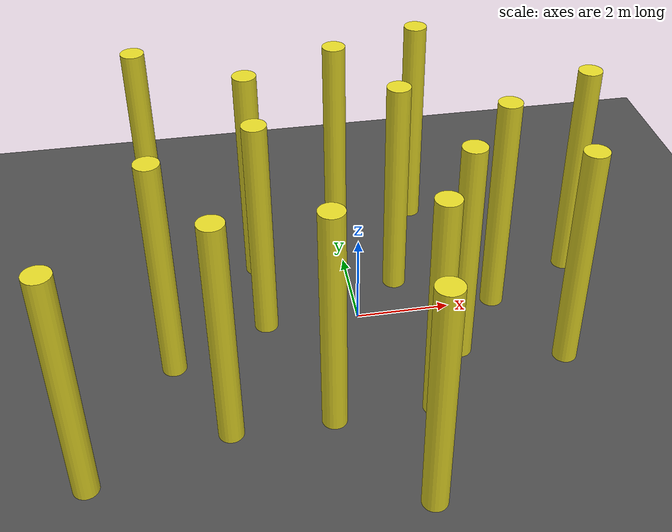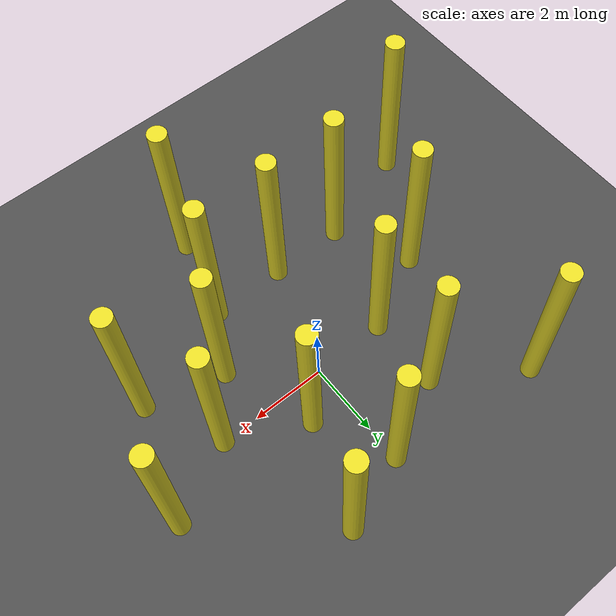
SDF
<sdf version="1.7">
 <world name="default">
  <light name="sun" type="directional">
   <pose>0 0 10 0 -0 0</pose>
   <diffuse>0.8 0.8 0.8 1</diffuse>
   <specular>0.2 0.2 0.2 1</specular>
   <attenuation>
    <range>1000</range>
    <constant>0.9</constant>
    <linear>0.01</linear>
    <quadratic>0.001</quadratic>
   </attenuation>
   <direction>-0.5 0.1 -0.9</direction>
   <spot><inner_angle>0</inner_angle><outer_angle>0</outer_angle><falloff>0</falloff></spot>
  </light>
  <model name="asphalt_plane">
   <static>1</static>
   <link name="link">
    <collision name="collision"><geometry><box><size>200 200 0.1</size></box></geometry></collision>
    <visual name="visual">
     <cast_shadows>0</cast_shadows>
     <geometry><box><size>200 200 0.1</size></box></geometry>
     <material>
      <script>
       <uri>model://asphalt_plane/materials/scripts</uri>
       <uri>model://asphalt_plane/materials/textures</uri>
       <name>vrc/asphalt</name>
      </script>
     </material>
    </visual>
   </link>
  </model>
  <gravity>0 0 -9.7925</gravity>
  <magnetic_field>6e-06 2.3e-05 -4.2e-05</magnetic_field>
  <atmosphere type="adiabatic"/>
  <physics name="default_physics" default="0" type="ode">
   <max_step_size>0.001</max_step_size>
   <real_time_factor>1</real_time_factor>
   <real_time_update_rate>1000</real_time_update_rate>
  </physics>
  <scene><ambient>0.4 0.4 0.4 1</ambient><background>0.6 0.6 0.9 1</background><shadows>1</shadows></scene>
  <audio><device>default</device></audio>
  <spherical_coordinates>
   <surface_model>EARTH_WGS84</surface_model>
   <latitude_deg>0</latitude_deg>
   <longitude_deg>0</longitude_deg>
   <elevation>0</elevation>
   <heading_deg>0</heading_deg>
  </spherical_coordinates>
  <model name="landing_pad_H">
   <frame name="landing_H::__model__" attached_to="landing_H::link">
    <pose relative_to="__model__">0 0 0.01 0 -0 0</pose>
   </frame>
   <static>1</static>
   <link name="landing_H::link">
    <inertial>
     <mass>0.5</mass>
     <inertia><ixx>0.001</ixx><ixy>0</ixy><ixz>0</ixz><iyy>0.001</iyy><iyz>0</iyz><izz>0.001</izz></inertia>
    </inertial>
    <visual name="visual">
     <geometry><box><size>0.8 0.8 0.005</size></box></geometry>
     <material>
      <script>
       <uri>model://landing_H/materials/scripts</uri>
       <uri>model://landing_H/materials/textures</uri>
       <name>Cube/landing_H</name>
      </script>
     </material>
    </visual>
    <pose relative_to="landing_H::__model__">0 0 0 0 -0 0</pose>
   </link>
  </model>
  <model name="cylinder0">
   <pose>0.774387 6.41667 0 0 -0 0</pose>
   <frame name="obs_cylinder_large::__model__" attached_to="obs_cylinder_large::link">
    <pose relative_to="__model__">-5 -3 0 0 -0 0</pose>
   </frame>
   <link name="obs_cylinder_large::link">
    <inertial><mass>1</mass></inertial>
    <pose relative_to="obs_cylinder_large::__model__">0 0 0 0 -0 0</pose>
    <visual name="visual">
     <geometry><cylinder><radius>0.25</radius><length>5</length></cylinder></geometry>
     <material>
      <script><name>Gazebo/Yellow</name><uri>file://media/materials/scripts/gazebo.material</uri></script>
     </material>
     <pose>0 0 2.5 0 -0 0</pose>
    </visual>
    <collision name="collision">
     <pose>0 0 2.5 0 -0 0</pose>
     <geometry><cylinder><radius>0.25</radius><length>5</length></cylinder></geometry>
    </collision>
   </link>
   <static>1</static>
  </model>
  <model name="cylinder1">
   <pose>-0.693514 -3.88791 0 0 -0 0</pose>
   <frame name="obs_cylinder_large::__model__" attached_to="obs_cylinder_large::link">
    <pose relative_to="__model__">-5 0 0 0 -0 0</pose>
   </frame>
   <link name="obs_cylinder_large::link">
    <inertial><mass>1</mass></inertial>
    <pose relative_to="obs_cylinder_large::__model__">0 0 0 0 -0 0</pose>
    <visual name="visual">
     <geometry><cylinder><radius>0.25</radius><length>5</length></cylinder></geometry>
     <material>
      <script><name>Gazebo/Yellow</name><uri>file://media/materials/scripts/gazebo.material</uri></script>
     </material>
     <pose>0 0 2.5 0 -0 0</pose>
    </visual>
    <collision name="collision">
     <pose>0 0 2.5 0 -0 0</pose>
     <geometry><cylinder><radius>0.25</radius><length>5</length></cylinder></geometry>
    </collision>
   </link>
   <static>1</static>
  </model>
  <model name="cylinder2">
   <frame name="obs_cylinder_large::__model__" attached_to="obs_cylinder_large::link">
    <pose relative_to="__model__">-4 -1 0 0 -0 0</pose>
   </frame>
   <link name="obs_cylinder_large::link">
    <inertial><mass>1</mass></inertial>
    <pose relative_to="obs_cylinder_large::__model__">0 0 0 0 -0 0</pose>
    <visual name="visual">
     <geometry><cylinder><radius>0.25</radius><length>5</length></cylinder></geometry>
     <material>
      <script><name>Gazebo/Yellow</name><uri>file://media/materials/scripts/gazebo.material</uri></script>
     </material>
     <pose>0 0 2.5 0 -0 0</pose>
    </visual>
    <collision name="collision">
     <pose>0 0 2.5 0 -0 0</pose>
     <geometry><cylinder><radius>0.25</radius><length>5</length></cylinder></geometry>
    </collision>
   </link>
   <static>1</static>
  </model>
  <model name="cylinder3">
   <frame name="obs_cylinder_large::__model__" attached_to="obs_cylinder_large::link">
    <pose relative_to="__model__">0 3 0 0 -0 0</pose>
   </frame>
   <link name="obs_cylinder_large::link">
    <inertial><mass>1</mass></inertial>
    <pose relative_to="obs_cylinder_large::__model__">0 0 0 0 -0 0</pose>
    <visual name="visual">
     <geometry><cylinder><radius>0.25</radius><length>5</length></cylinder></geometry>
     <material>
      <script><name>Gazebo/Yellow</name><uri>file://media/materials/scripts/gazebo.material</uri></script>
     </material>
     <pose>0 0 2.5 0 -0 0</pose>
    </visual>
    <collision name="collision">
     <pose>0 0 2.5 0 -0 0</pose>
     <geometry><cylinder><radius>0.25</radius><length>5</length></cylinder></geometry>
    </collision>
   </link>
   <static>1</static>
  </model>
  <model name="cylinder4">
   <frame name="obs_cylinder_large::__model__" attached_to="obs_cylinder_large::link">
    <pose relative_to="__model__">-3 -3 0 0 -0 0</pose>
   </frame>
   <link name="obs_cylinder_large::link">
    <inertial><mass>1</mass></inertial>
    <pose relative_to="obs_cylinder_large::__model__">0 0 0 0 -0 0</pose>
    <visual name="visual">
     <geometry><cylinder><radius>0.25</radius><length>5</length></cylinder></geometry>
     <material>
      <script><name>Gazebo/Yellow</name><uri>file://media/materials/scripts/gazebo.material</uri></script>
     </material>
     <pose>0 0 2.5 0 -0 0</pose>
    </visual>
    <collision name="collision">
     <pose>0 0 2.5 0 -0 0</pose>
     <geometry><cylinder><radius>0.25</radius><length>5</length></cylinder></geometry>
    </collision>
   </link>
   <static>1</static>
  </model>
  <model name="cylinder5">
   <frame name="obs_cylinder_large::__model__" attached_to="obs_cylinder_large::link">
    <pose relative_to="__model__">-2 0 0 0 -0 0</pose>
   </frame>
   <link name="obs_cylinder_large::link">
    <inertial><mass>1</mass></inertial>
    <pose relative_to="obs_cylinder_large::__model__">0 0 0 0 -0 0</pose>
    <visual name="visual">
     <geometry><cylinder><radius>0.25</radius><length>5</length></cylinder></geometry>
     <material>
      <script><name>Gazebo/Yellow</name><uri>file://media/materials/scripts/gazebo.material</uri></script>
     </material>
     <pose>0 0 2.5 0 -0 0</pose>
    </visual>
    <collision name="collision">
     <pose>0 0 2.5 0 -0 0</pose>
     <geometry><cylinder><radius>0.25</radius><length>5</length></cylinder></geometry>
    </collision>
   </link>
   <static>1</static>
  </model>
  <model name="cylinder6">
   <frame name="obs_cylinder_large::__model__" attached_to="obs_cylinder_large::link">
    <pose relative_to="__model__">-2 2 0 0 -0 0</pose>
   </frame>
   <link name="obs_cylinder_large::link">
    <inertial><mass>1</mass></inertial>
    <pose relative_to="obs_cylinder_large::__model__">0 0 0 0 -0 0</pose>
    <visual name="visual">
     <geometry><cylinder><radius>0.25</radius><length>5</length></cylinder></geometry>
     <material>
      <script><name>Gazebo/Yellow</name><uri>file://media/materials/scripts/gazebo.material</uri></script>
     </material>
     <pose>0 0 2.5 0 -0 0</pose>
    </visual>
    <collision name="collision">
     <pose>0 0 2.5 0 -0 0</pose>
     <geometry><cylinder><radius>0.25</radius><length>5</length></cylinder></geometry>
    </collision>
   </link>
   <static>1</static>
  </model>
  <model name="cylinder7">
   <pose>1.4445 -4.25593 0 0 -0 0</pose>
   <frame name="obs_cylinder_large::__model__" attached_to="obs_cylinder_large::link">
    <pose relative_to="__model__">-1 -1 0 0 -0 0</pose>
   </frame>
   <link name="obs_cylinder_large::link">
    <inertial><mass>1</mass></inertial>
    <pose relative_to="obs_cylinder_large::__model__">0 0 0 0 -0 0</pose>
    <visual name="visual">
     <geometry><cylinder><radius>0.25</radius><length>5</length></cylinder></geometry>
     <material>
      <script><name>Gazebo/Yellow</name><uri>file://media/materials/scripts/gazebo.material</uri></script>
     </material>
     <pose>0 0 2.5 0 -0 0</pose>
    </visual>
    <collision name="collision">
     <pose>0 0 2.5 0 -0 0</pose>
     <geometry><cylinder><radius>0.25</radius><length>5</length></cylinder></geometry>
    </collision>
   </link>
   <static>1</static>
  </model>
  <model name="cylinder8">
   <frame name="obs_cylinder_large::__model__" attached_to="obs_cylinder_large::link">
    <pose relative_to="__model__">1 1 0 0 -0 0</pose>
   </frame>
   <link name="obs_cylinder_large::link">
    <inertial><mass>1</mass></inertial>
    <pose relative_to="obs_cylinder_large::__model__">0 0 0 0 -0 0</pose>
    <visual name="visual">
     <geometry><cylinder><radius>0.25</radius><length>5</length></cylinder></geometry>
     <material>
      <script><name>Gazebo/Yellow</name><uri>file://media/materials/scripts/gazebo.material</uri></script>
     </material>
     <pose>0 0 2.5 0 -0 0</pose>
    </visual>
    <collision name="collision">
     <pose>0 0 2.5 0 -0 0</pose>
     <geometry><cylinder><radius>0.25</radius><length>5</length></cylinder></geometry>
    </collision>
   </link>
   <static>1</static>
  </model>
  <model name="cylinder9">
   <frame name="obs_cylinder_large::__model__" attached_to="obs_cylinder_large::link">
    <pose relative_to="__model__">-1 -3 0 0 -0 0</pose>
   </frame>
   <link name="obs_cylinder_large::link">
    <inertial><mass>1</mass></inertial>
    <pose relative_to="obs_cylinder_large::__model__">0 0 0 0 -0 0</pose>
    <visual name="visual">
     <geometry><cylinder><radius>0.25</radius><length>5</length></cylinder></geometry>
     <material>
      <script><name>Gazebo/Yellow</name><uri>file://media/materials/scripts/gazebo.material</uri></script>
     </material>
     <pose>0 0 2.5 0 -0 0</pose>
    </visual>
    <collision name="collision">
     <pose>0 0 2.5 0 -0 0</pose>
     <geometry><cylinder><radius>0.25</radius><length>5</length></cylinder></geometry>
    </collision>
   </link>
   <static>1</static>
  </model>
  <model name="cylinder10">
   <frame name="obs_cylinder_large::__model__" attached_to="obs_cylinder_large::link">
    <pose relative_to="__model__">1 -3 0 0 -0 0</pose>
   </frame>
   <link name="obs_cylinder_large::link">
    <inertial><mass>1</mass></inertial>
    <pose relative_to="obs_cylinder_large::__model__">0 0 0 0 -0 0</pose>
    <visual name="visual">
     <geometry><cylinder><radius>0.25</radius><length>5</length></cylinder></geometry>
     <material>
      <script><name>Gazebo/Yellow</name><uri>file://media/materials/scripts/gazebo.material</uri></script>
     </material>
     <pose>0 0 2.5 0 -0 0</pose>
    </visual>
    <collision name="collision">
     <pose>0 0 2.5 0 -0 0</pose>
     <geometry><cylinder><radius>0.25</radius><length>5</length></cylinder></geometry>
    </collision>
   </link>
   <static>1</static>
  </model>
  <model name="cylinder11">
   <pose>-0.114959 -0.462533 0 0 -0 0</pose>
   <frame name="obs_cylinder_large::__model__" attached_to="obs_cylinder_large::link">
    <pose relative_to="__model__">2 -1 0 0 -0 0</pose>
   </frame>
   <link name="obs_cylinder_large::link">
    <inertial><mass>1</mass></inertial>
    <pose relative_to="obs_cylinder_large::__model__">0 0 0 0 -0 0</pose>
    <visual name="visual">
     <geometry><cylinder><radius>0.25</radius><length>5</length></cylinder></geometry>
     <material>
      <script><name>Gazebo/Yellow</name><uri>file://media/materials/scripts/gazebo.material</uri></script>
     </material>
     <pose>0 0 2.5 0 -0 0</pose>
    </visual>
    <collision name="collision">
     <pose>0 0 2.5 0 -0 0</pose>
     <geometry><cylinder><radius>0.25</radius><length>5</length></cylinder></geometry>
    </collision>
   </link>
   <static>1</static>
  </model>
  <model name="cylinder12">
   <frame name="obs_cylinder_large::__model__" attached_to="obs_cylinder_large::link">
    <pose relative_to="__model__">3 0 0 0 -0 0</pose>
   </frame>
   <link name="obs_cylinder_large::link">
    <inertial><mass>1</mass></inertial>
    <pose relative_to="obs_cylinder_large::__model__">0 0 0 0 -0 0</pose>
    <visual name="visual">
     <geometry><cylinder><radius>0.25</radius><length>5</length></cylinder></geometry>
     <material>
      <script><name>Gazebo/Yellow</name><uri>file://media/materials/scripts/gazebo.material</uri></script>
     </material>
     <pose>0 0 2.5 0 -0 0</pose>
    </visual>
    <collision name="collision">
     <pose>0 0 2.5 0 -0 0</pose>
     <geometry><cylinder><radius>0.25</radius><length>5</length></cylinder></geometry>
    </collision>
   </link>
   <static>1</static>
  </model>
  <model name="cylinder13">
   <pose>-1.06332 1.67316 0 0 -0 0</pose>
   <frame name="obs_cylinder_large::__model__" attached_to="obs_cylinder_large::link">
    <pose relative_to="__model__">3 2 0 0 -0 0</pose>
   </frame>
   <link name="obs_cylinder_large::link">
    <inertial><mass>1</mass></inertial>
    <pose relative_to="obs_cylinder_large::__model__">0 0 0 0 -0 0</pose>
    <visual name="visual">
     <geometry><cylinder><radius>0.25</radius><length>5</length></cylinder></geometry>
     <material>
      <script><name>Gazebo/Yellow</name><uri>file://media/materials/scripts/gazebo.material</uri></script>
     </material>
     <pose>0 0 2.5 0 -0 0</pose>
    </visual>
    <collision name="collision">
     <pose>0 0 2.5 0 -0 0</pose>
     <geometry><cylinder><radius>0.25</radius><length>5</length></cylinder></geometry>
    </collision>
   </link>
   <static>1</static>
  </model>
  <model name="cylinder14">
   <frame name="obs_cylinder_large::__model__" attached_to="obs_cylinder_large::link">
    <pose relative_to="__model__">4 -2 0 0 -0 0</pose>
   </frame>
   <link name="obs_cylinder_large::link">
    <inertial><mass>1</mass></inertial>
    <pose relative_to="obs_cylinder_large::__model__">0 0 0 0 -0 0</pose>
    <visual name="visual">
     <geometry><cylinder><radius>0.25</radius><length>5</length></cylinder></geometry>
     <material>
      <script><name>Gazebo/Yellow</name><uri>file://media/materials/scripts/gazebo.material</uri></script>
     </material>
     <pose>0 0 2.5 0 -0 0</pose>
    </visual>
    <collision name="collision">
     <pose>0 0 2.5 0 -0 0</pose>
     <geometry><cylinder><radius>0.25</radius><length>5</length></cylinder></geometry>
    </collision>
   </link>
   <static>1</static>
  </model>
  <model name="cylinder15">
   <frame name="obs_cylinder_large::__model__" attached_to="obs_cylinder_large::link">
    <pose relative_to="__model__">5 1 0 0 -0 0</pose>
   </frame>
   <link name="obs_cylinder_large::link">
    <inertial><mass>1</mass></inertial>
    <pose relative_to="obs_cylinder_large::__model__">0 0 0 0 -0 0</pose>
    <visual name="visual">
     <geometry><cylinder><radius>0.25</radius><length>5</length></cylinder></geometry>
     <material>
      <script><name>Gazebo/Yellow</name><uri>file://media/materials/scripts/gazebo.material</uri></script>
     </material>
     <pose>0 0 2.5 0 -0 0</pose>
    </visual>
    <collision name="collision">
     <pose>0 0 2.5 0 -0 0</pose>
     <geometry><cylinder><radius>0.25</radius><length>5</length></cylinder></geometry>
    </collision>
   </link>
   <static>1</static>
  </model>
 </world>
</sdf>
